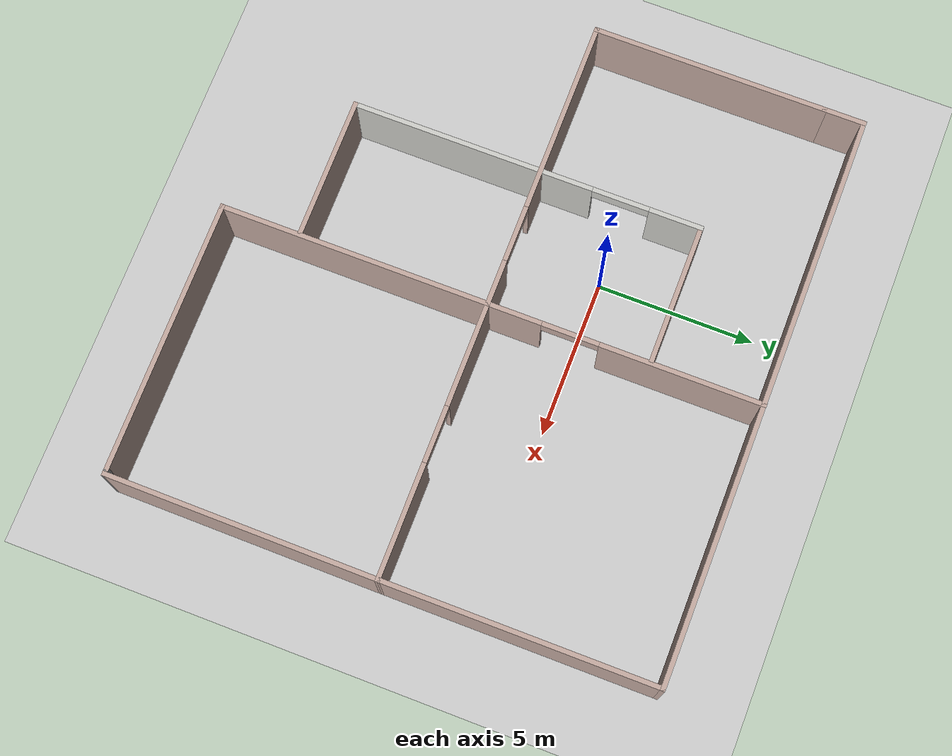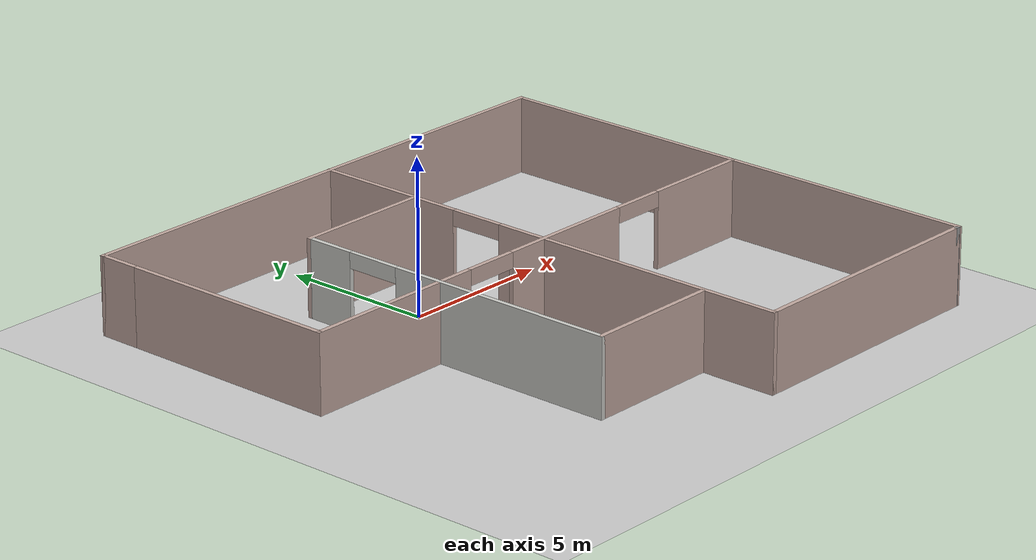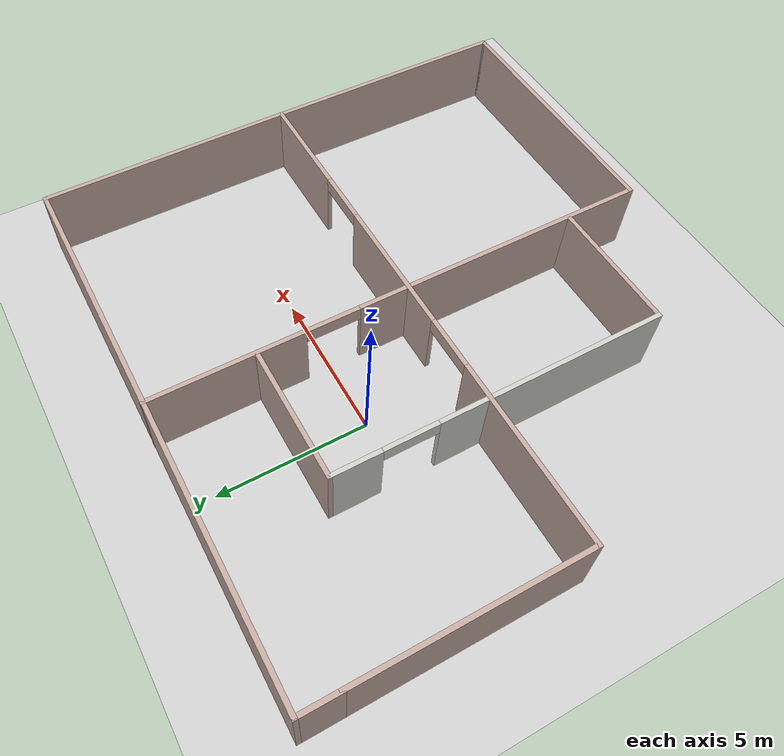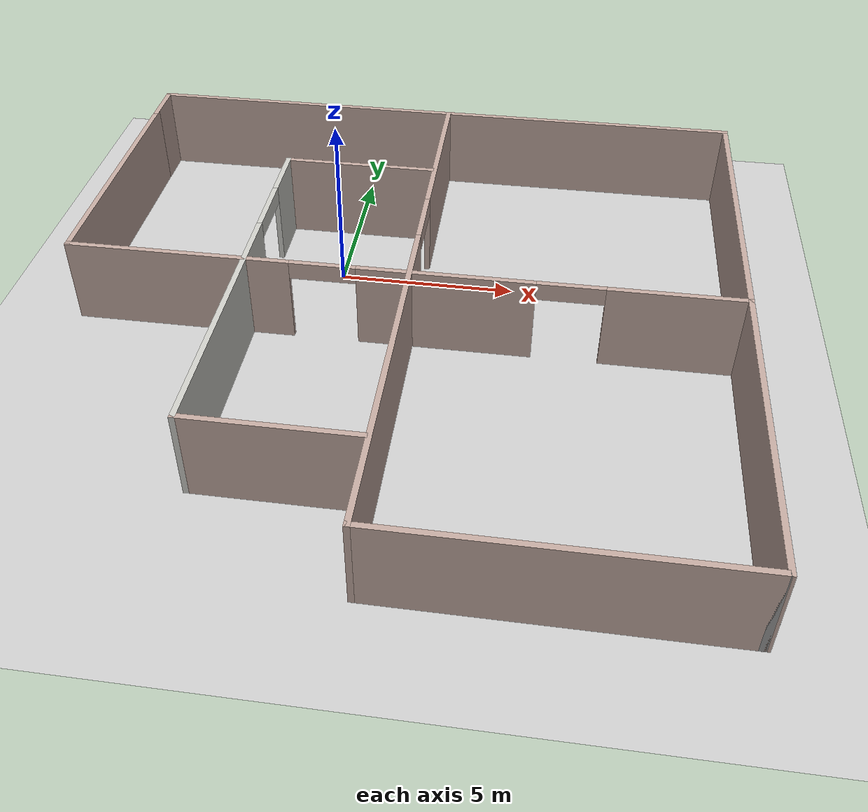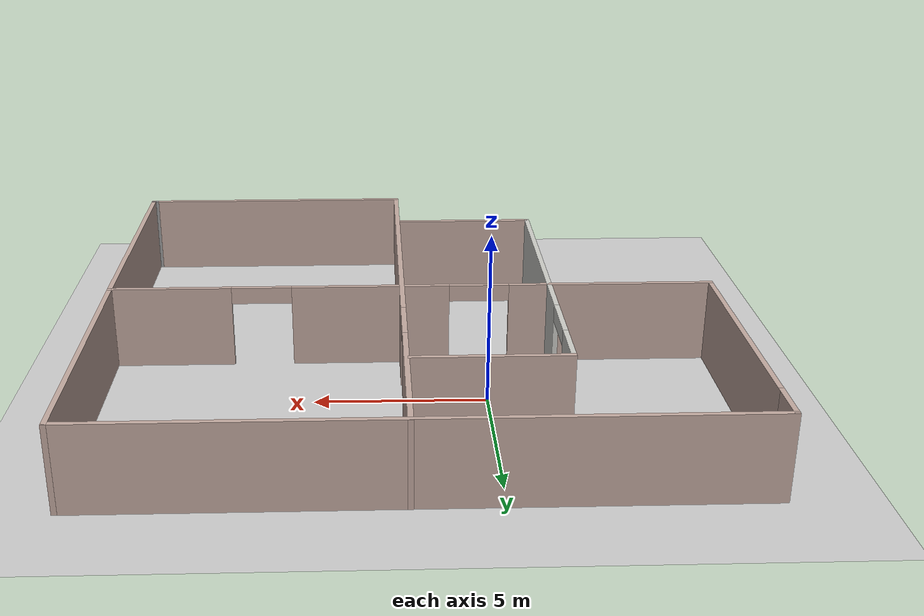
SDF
<sdf version="1.6">
 <world name="default">
  <light name="sun" type="directional">
   <pose>0 0 10 0 -0 0</pose>
   <diffuse>0.8 0.8 0.8 1</diffuse>
   <specular>0.2 0.2 0.2 1</specular>
   <attenuation>
    <range>1000</range>
    <constant>0.9</constant>
    <linear>0.01</linear>
    <quadratic>0.001</quadratic>
   </attenuation>
   <direction>-0.5 0.1 -0.9</direction>
  </light>
  <model name="ground_plane">
   <static>1</static>
   <link name="link">
    <collision name="collision">
     <geometry><plane><normal>0 0 1</normal><size>100 100</size></plane></geometry>
     <surface><friction><ode><mu>100</mu><mu2>50</mu2></ode></friction></surface>
    </collision>
    <visual name="visual">
     <cast_shadows>0</cast_shadows>
     <geometry><plane><normal>0 0 1</normal><size>100 100</size></plane></geometry>
     <material>
      <script><uri>file://media/materials/scripts/gazebo.material</uri><name>Gazebo/Grey</name></script>
     </material>
    </visual>
   </link>
  </model>
  <gravity>0 0 -9.8</gravity>
  <magnetic_field>6e-06 2.3e-05 -4.2e-05</magnetic_field>
  <atmosphere type="adiabatic"/>
  <physics name="default_physics" default="0" type="ode">
   <max_step_size>0.001</max_step_size>
   <real_time_factor>1</real_time_factor>
   <real_time_update_rate>1000</real_time_update_rate>
  </physics>
  <scene><ambient>0.4 0.4 0.4 1</ambient><background>0.7 0.7 0.7 1</background><shadows>1</shadows></scene>
  <spherical_coordinates>
   <surface_model>EARTH_WGS84</surface_model>
   <latitude_deg>0</latitude_deg>
   <longitude_deg>0</longitude_deg>
   <elevation>0</elevation>
   <heading_deg>0</heading_deg>
  </spherical_coordinates>
  <model name="Sample2">
   <pose>2.09448 -2.686 0 0 -0 0</pose>
   <link name="Wall_10">
    <collision name="Wall_10_Collision">
     <geometry><box><size>8.75 0.15 2.5</size></box></geometry>
     <pose>0 0 1.25 0 -0 0</pose>
    </collision>
    <visual name="Wall_10_Visual">
     <pose>0 0 1.25 0 -0 0</pose>
     <geometry><box><size>8.75 0.15 2.5</size></box></geometry>
     <material>
      <script><uri>file://media/materials/scripts/gazebo.material</uri><name>Gazebo/Grey</name></script>
      <ambient>0.760784 0.662745 0.627451 1</ambient>
     </material>
    </visual>
    <pose>4.60868 -8.54982 0 0 -0 0</pose>
   </link>
   <link name="Wall_11">
    <collision name="Wall_11_Collision">
     <geometry><box><size>0.25 0.15 2.5</size></box></geometry>
     <pose>0 0 1.25 0 -0 0</pose>
    </collision>
    <visual name="Wall_11_Visual">
     <pose>0 0 1.25 0 -0 0</pose>
     <geometry><box><size>0.25 0.15 2.5</size></box></geometry>
     <material>
      <script><uri>file://media/materials/scripts/gazebo.material</uri><name>Gazebo/Grey</name></script>
      <ambient>1 1 1 1</ambient>
     </material>
    </visual>
    <pose>8.95868 -8.54982 0 0 -0 0</pose>
   </link>
   <link name="Wall_12">
    <collision name="Wall_12_Collision">
     <geometry><box><size>8.6389 0.15 2.5</size></box></geometry>
     <pose>0 0 1.25 0 -0 0</pose>
    </collision>
    <visual name="Wall_12_Visual">
     <pose>0 0 1.25 0 -0 0</pose>
     <geometry><box><size>8.6389 0.15 2.5</size></box></geometry>
     <material>
      <script><uri>file://media/materials/scripts/gazebo.material</uri><name>Gazebo/Grey</name></script>
      <ambient>0.760784 0.662745 0.627451 1</ambient>
     </material>
    </visual>
    <pose>9.02925 -4.30542 0 0 -0 1.56595</pose>
   </link>
   <link name="Wall_15">
    <collision name="Wall_15_Collision">
     <geometry><box><size>4.5 0.15 2.5</size></box></geometry>
     <pose>0 0 1.25 0 -0 0</pose>
    </collision>
    <visual name="Wall_15_Visual">
     <pose>0 0 1.25 0 -0 0</pose>
     <geometry><box><size>4.5 0.15 2.5</size></box></geometry>
     <material>
      <script><uri>file://media/materials/scripts/gazebo.material</uri><name>Gazebo/Grey</name></script>
      <ambient>0.760784 0.662745 0.627451 1</ambient>
     </material>
    </visual>
    <pose>-1.97197 5.04207 0 0 -0 3.14159</pose>
   </link>
   <link name="Wall_16">
    <pose>-4.14697 -0.507931 0 0 0 -1.5708</pose>
    <visual name="Wall_16_Visual_0">
     <pose>-4.76855 0 1.25 0 -0 0</pose>
     <geometry><box><size>1.71289 0.15 2.5</size></box></geometry>
     <material>
      <script><uri>file://media/materials/scripts/gazebo.material</uri><name>Gazebo/CeilingTiled</name></script>
      <ambient>0.760784 0.662745 0.627451 1</ambient>
     </material>
    </visual>
    <collision name="Wall_16_Collision_0">
     <geometry><box><size>1.71289 0.15 2.5</size></box></geometry>
     <pose>-4.76855 0 1.25 0 -0 0</pose>
    </collision>
    <visual name="Wall_16_Visual_1">
     <pose>1.75645 0 1.25 0 -0 0</pose>
     <geometry><box><size>7.73711 0.15 2.5</size></box></geometry>
     <material>
      <script><uri>file://media/materials/scripts/gazebo.material</uri><name>Gazebo/CeilingTiled</name></script>
      <ambient>0.760784 0.662745 0.627451 1</ambient>
     </material>
    </visual>
    <collision name="Wall_16_Collision_1">
     <geometry><box><size>7.73711 0.15 2.5</size></box></geometry>
     <pose>1.75645 0 1.25 0 -0 0</pose>
    </collision>
    <visual name="Wall_16_Visual_2">
     <pose>-3.01211 0 2.25 0 -0 0</pose>
     <geometry><box><size>1.8 0.15 0.5</size></box></geometry>
     <material>
      <script><uri>file://media/materials/scripts/gazebo.material</uri><name>Gazebo/CeilingTiled</name></script>
      <ambient>0.760784 0.662745 0.627451 1</ambient>
     </material>
    </visual>
    <collision name="Wall_16_Collision_2">
     <geometry><box><size>1.8 0.15 0.5</size></box></geometry>
     <pose>-3.01211 0 2.25 0 -0 0</pose>
    </collision>
   </link>
   <link name="Wall_17">
    <collision name="Wall_17_Collision">
     <geometry><box><size>4.5 0.15 2.5</size></box></geometry>
     <pose>0 0 1.25 0 -0 0</pose>
    </collision>
    <visual name="Wall_17_Visual">
     <pose>0 0 1.25 0 -0 0</pose>
     <geometry><box><size>4.5 0.15 2.5</size></box></geometry>
     <material>
      <script><uri>file://media/materials/scripts/gazebo.material</uri><name>Gazebo/Grey</name></script>
      <ambient>0.760784 0.662745 0.627451 1</ambient>
     </material>
    </visual>
    <pose>-1.97197 -6.05793 0 0 -0 0</pose>
   </link>
   <link name="Wall_3">
    <collision name="Wall_3_Collision">
     <geometry><box><size>7.5 0.15 2.5</size></box></geometry>
     <pose>0 0 1.25 0 -0 0</pose>
    </collision>
    <visual name="Wall_3_Visual">
     <pose>0 0 1.25 0 -0 0</pose>
     <geometry><box><size>7.5 0.15 2.5</size></box></geometry>
     <material>
      <script><uri>file://media/materials/scripts/gazebo.material</uri><name>Gazebo/Grey</name></script>
      <ambient>0.760784 0.662745 0.627451 1</ambient>
     </material>
    </visual>
    <pose>-9.05018 3.61399 0 0 0 -1.5708</pose>
   </link>
   <link name="Wall_4">
    <pose>-0.000181 -0.061015 0 0 -0 0</pose>
    <visual name="Wall_4_Visual_0">
     <pose>-6.02265 0 1.25 0 -0 0</pose>
     <geometry><box><size>6.20469 0.15 2.5</size></box></geometry>
     <material>
      <script><uri>file://media/materials/scripts/gazebo.material</uri><name>Gazebo/Grey</name></script>
      <ambient>0.760784 0.662745 0.627451 1</ambient>
     </material>
    </visual>
    <collision name="Wall_4_Collision_0">
     <geometry><box><size>6.20469 0.15 2.5</size></box></geometry>
     <pose>-6.02265 0 1.25 0 -0 0</pose>
    </collision>
    <visual name="Wall_4_Visual_1">
     <pose>1.25132 0 1.25 0 -0 0</pose>
     <geometry><box><size>4.74325 0.15 2.5</size></box></geometry>
     <material>
      <script><uri>file://media/materials/scripts/gazebo.material</uri><name>Gazebo/Grey</name></script>
      <ambient>0.760784 0.662745 0.627451 1</ambient>
     </material>
    </visual>
    <collision name="Wall_4_Collision_1">
     <geometry><box><size>4.74325 0.15 2.5</size></box></geometry>
     <pose>1.25132 0 1.25 0 -0 0</pose>
    </collision>
    <visual name="Wall_4_Visual_2">
     <pose>7.27397 0 1.25 0 -0 0</pose>
     <geometry><box><size>3.70206 0.15 2.5</size></box></geometry>
     <material>
      <script><uri>file://media/materials/scripts/gazebo.material</uri><name>Gazebo/Grey</name></script>
      <ambient>0.760784 0.662745 0.627451 1</ambient>
     </material>
    </visual>
    <collision name="Wall_4_Collision_2">
     <geometry><box><size>3.70206 0.15 2.5</size></box></geometry>
     <pose>7.27397 0 1.25 0 -0 0</pose>
    </collision>
    <visual name="Wall_4_Visual_3">
     <pose>-2.02031 0 2.25 0 -0 0</pose>
     <geometry><box><size>1.8 0.15 0.5</size></box></geometry>
     <material>
      <script><uri>file://media/materials/scripts/gazebo.material</uri><name>Gazebo/Grey</name></script>
      <ambient>0.760784 0.662745 0.627451 1</ambient>
     </material>
    </visual>
    <collision name="Wall_4_Collision_3">
     <geometry><box><size>1.8 0.15 0.5</size></box></geometry>
     <pose>-2.02031 0 2.25 0 -0 0</pose>
    </collision>
    <visual name="Wall_4_Visual_4">
     <pose>4.52294 0 2.25 0 -0 0</pose>
     <geometry><box><size>1.8 0.15 0.5</size></box></geometry>
     <material>
      <script><uri>file://media/materials/scripts/gazebo.material</uri><name>Gazebo/Grey</name></script>
      <ambient>0.760784 0.662745 0.627451 1</ambient>
     </material>
    </visual>
    <collision name="Wall_4_Collision_4">
     <geometry><box><size>1.8 0.15 0.5</size></box></geometry>
     <pose>4.52294 0 2.25 0 -0 0</pose>
    </collision>
   </link>
   <link name="Wall_5">
    <collision name="Wall_5_Collision">
     <geometry><box><size>8.75 0.15 2.5</size></box></geometry>
     <pose>0 0 1.25 0 -0 0</pose>
    </collision>
    <visual name="Wall_5_Visual">
     <pose>0 0 1.25 0 -0 0</pose>
     <geometry><box><size>8.75 0.15 2.5</size></box></geometry>
     <material>
      <script><uri>file://media/materials/scripts/gazebo.material</uri><name>Gazebo/Grey</name></script>
      <ambient>0.760784 0.662745 0.627451 1</ambient>
     </material>
    </visual>
    <pose>9.04982 4.23898 0 0 -0 1.5708</pose>
   </link>
   <link name="Wall_6">
    <collision name="Wall_6_Collision">
     <geometry><box><size>18.25 0.15 2.5</size></box></geometry>
     <pose>0 0 1.25 0 -0 0</pose>
    </collision>
    <visual name="Wall_6_Visual">
     <pose>0 0 1.25 0 -0 0</pose>
     <geometry><box><size>18.25 0.15 2.5</size></box></geometry>
     <material>
      <script><uri>file://media/materials/scripts/gazebo.material</uri><name>Gazebo/Grey</name></script>
      <ambient>0.760784 0.662745 0.627451 1</ambient>
     </material>
    </visual>
    <pose>-0.000181 8.53899 0 0 -0 3.14159</pose>
   </link>
   <link name="Wall_7">
    <collision name="Wall_7_Collision">
     <geometry><box><size>1.4 0.15 2.5</size></box></geometry>
     <pose>0 0 1.25 0 -0 0</pose>
    </collision>
    <visual name="Wall_7_Visual">
     <pose>0 0 1.25 0 -0 0</pose>
     <geometry><box><size>1.4 0.15 2.5</size></box></geometry>
     <material>
      <script><uri>file://media/materials/scripts/gazebo.material</uri><name>Gazebo/Grey</name></script>
      <ambient>0.760784 0.662745 0.627451 1</ambient>
     </material>
    </visual>
    <pose>-9.05018 7.91399 0 0 0 -1.5708</pose>
   </link>
   <link name="Wall_9">
    <pose>0.308679 0.000181 0 0 0 -1.5708</pose>
    <visual name="Wall_9_Visual_0">
     <pose>-6.03209 0 1.25 0 -0 0</pose>
     <geometry><box><size>5.18583 0.15 2.5</size></box></geometry>
     <material>
      <script><uri>file://media/materials/scripts/gazebo.material</uri><name>Gazebo/Grey</name></script>
      <ambient>0.760784 0.662745 0.627451 1</ambient>
     </material>
    </visual>
    <collision name="Wall_9_Collision_0">
     <geometry><box><size>5.18583 0.15 2.5</size></box></geometry>
     <pose>-6.03209 0 1.25 0 -0 0</pose>
    </collision>
    <visual name="Wall_9_Visual_1">
     <pose>3.49291 0 1.25 0 -0 0</pose>
     <geometry><box><size>10.2642 0.15 2.5</size></box></geometry>
     <material>
      <script><uri>file://media/materials/scripts/gazebo.material</uri><name>Gazebo/Grey</name></script>
      <ambient>0.760784 0.662745 0.627451 1</ambient>
     </material>
    </visual>
    <collision name="Wall_9_Collision_1">
     <geometry><box><size>10.2642 0.15 2.5</size></box></geometry>
     <pose>3.49291 0 1.25 0 -0 0</pose>
    </collision>
    <visual name="Wall_9_Visual_2">
     <pose>-2.53917 0 2.25 0 -0 0</pose>
     <geometry><box><size>1.8 0.15 0.5</size></box></geometry>
     <material>
      <script><uri>file://media/materials/scripts/gazebo.material</uri><name>Gazebo/Grey</name></script>
      <ambient>0.760784 0.662745 0.627451 1</ambient>
     </material>
    </visual>
    <collision name="Wall_9_Collision_2">
     <geometry><box><size>1.8 0.15 0.5</size></box></geometry>
     <pose>-2.53917 0 2.25 0 -0 0</pose>
    </collision>
   </link>
   <static>1</static>
  </model>
 </world>
</sdf>
